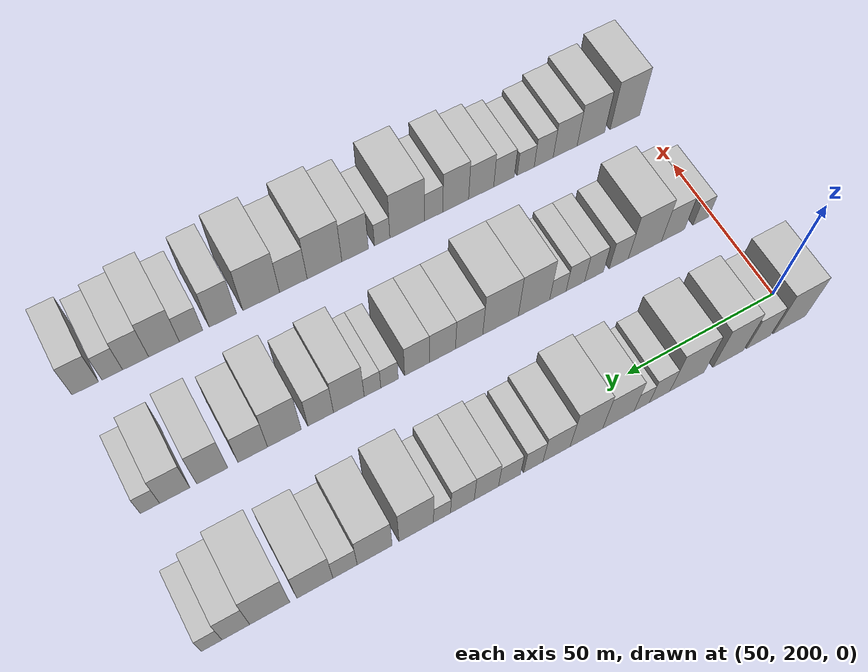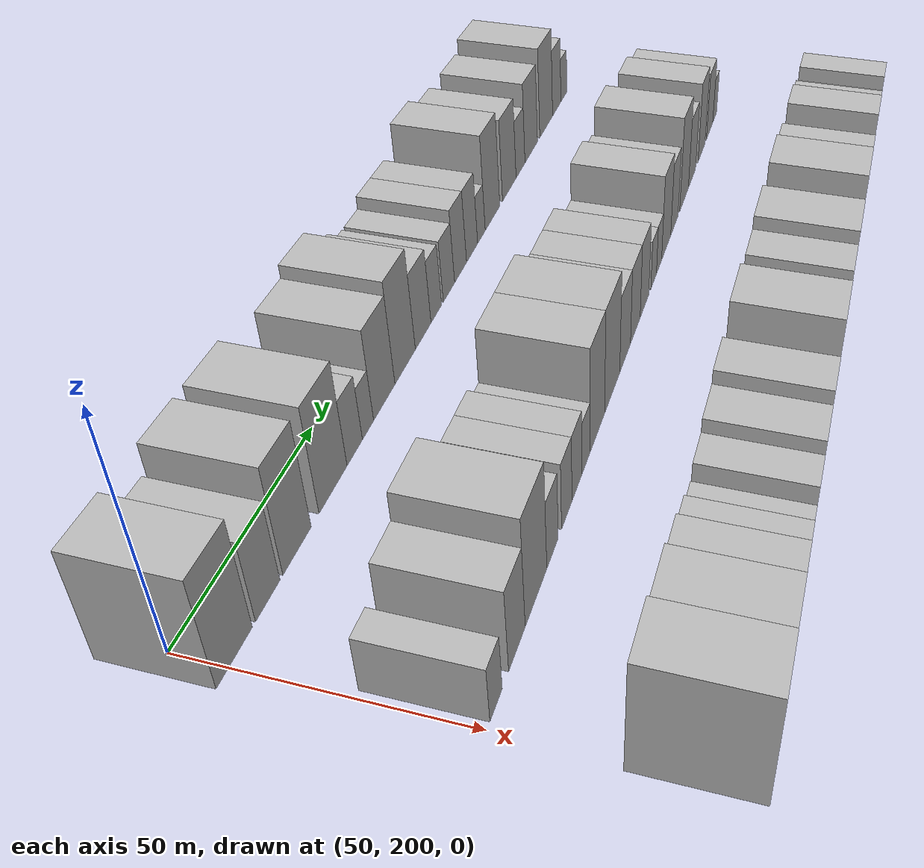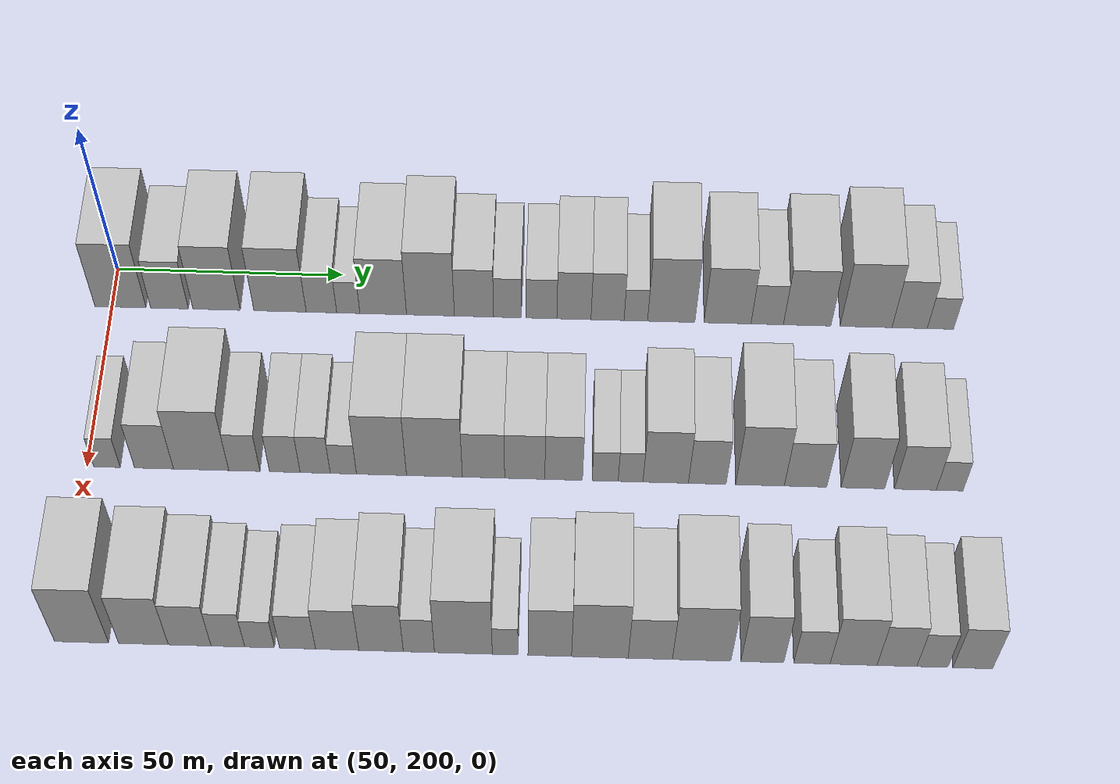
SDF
<sdf version="1.6">
 <world name="default">
  <model name="building_65">
   <static>1</static>
   <pose>50.0000 201.8939 0 0.000000 0.000000 0.000000</pose>
   <link name="link">
    <pose>0 0 12.00 0 0 0</pose>
    <collision name="collision"><geometry><box><size>20.0000 11.2611 24.0000</size></box></geometry></collision>
    <visual name="visual">
     <cast_shadows>0</cast_shadows>
     <geometry><box><size>20.0000 11.2611 24.0000</size></box></geometry>
     <material>
      <script>
       <uri>model://HANNAS_wall/materials/scripts</uri>
       <uri>model://HANNAS_wall/materials/textures</uri>
       <name>vrc/HANNAS_wall</name>
      </script>
     </material>
    </visual>
   </link>
  </model>
  <model name="building_66">
   <static>1</static>
   <pose>50.0000 212.6798 0 0.000000 0.000000 0.000000</pose>
   <link name="link">
    <pose>0 0 9.00 0 0 0</pose>
    <collision name="collision"><geometry><box><size>20.0000 8.3106 18.0000</size></box></geometry></collision>
    <visual name="visual">
     <cast_shadows>0</cast_shadows>
     <geometry><box><size>20.0000 8.3106 18.0000</size></box></geometry>
     <material>
      <script>
       <uri>model://HANNAS_wall/materials/scripts</uri>
       <uri>model://HANNAS_wall/materials/textures</uri>
       <name>vrc/HANNAS_wall</name>
      </script>
     </material>
    </visual>
   </link>
  </model>
  <model name="building_67">
   <static>1</static>
   <pose>50.0000 223.0413 0 0.000000 0.000000 0.000000</pose>
   <link name="link">
    <pose>0 0 12.00 0 0 0</pose>
    <collision name="collision"><geometry><box><size>20.0000 10.4125 24.0000</size></box></geometry></collision>
    <visual name="visual">
     <cast_shadows>0</cast_shadows>
     <geometry><box><size>20.0000 10.4125 24.0000</size></box></geometry>
     <material>
      <script>
       <uri>model://HANNAS_wall/materials/scripts</uri>
       <uri>model://HANNAS_wall/materials/textures</uri>
       <name>vrc/HANNAS_wall</name>
      </script>
     </material>
    </visual>
   </link>
  </model>
  <model name="building_68">
   <static>1</static>
   <pose>50.0000 236.9898 0 0.000000 0.000000 0.000000</pose>
   <link name="link">
    <pose>0 0 12.00 0 0 0</pose>
    <collision name="collision"><geometry><box><size>20.0000 11.4845 24.0000</size></box></geometry></collision>
    <visual name="visual">
     <cast_shadows>0</cast_shadows>
     <geometry><box><size>20.0000 11.4845 24.0000</size></box></geometry>
     <material>
      <script>
       <uri>model://HANNAS_wall/materials/scripts</uri>
       <uri>model://HANNAS_wall/materials/textures</uri>
       <name>vrc/HANNAS_wall</name>
      </script>
     </material>
    </visual>
   </link>
  </model>
  <model name="building_69">
   <static>1</static>
   <pose>50.0000 246.0879 0 0.000000 0.000000 0.000000</pose>
   <link name="link">
    <pose>0 0 7.50 0 0 0</pose>
    <collision name="collision"><geometry><box><size>20.0000 6.7117 15.0000</size></box></geometry></collision>
    <visual name="visual">
     <cast_shadows>0</cast_shadows>
     <geometry><box><size>20.0000 6.7117 15.0000</size></box></geometry>
     <material>
      <script>
       <uri>model://HANNAS_wall/materials/scripts</uri>
       <uri>model://HANNAS_wall/materials/textures</uri>
       <name>vrc/HANNAS_wall</name>
      </script>
     </material>
    </visual>
   </link>
  </model>
  <model name="building_70">
   <static>1</static>
   <pose>50.0000 251.9867 0 0.000000 0.000000 0.000000</pose>
   <link name="link">
    <pose>0 0 6.00 0 0 0</pose>
    <collision name="collision"><geometry><box><size>20.0000 5.0857 12.0000</size></box></geometry></collision>
    <visual name="visual">
     <cast_shadows>0</cast_shadows>
     <geometry><box><size>20.0000 5.0857 12.0000</size></box></geometry>
     <material>
      <script>
       <uri>model://HANNAS_wall/materials/scripts</uri>
       <uri>model://HANNAS_wall/materials/textures</uri>
       <name>vrc/HANNAS_wall</name>
      </script>
     </material>
    </visual>
   </link>
  </model>
  <model name="building_71">
   <static>1</static>
   <pose>50.0000 259.6445 0 0.000000 0.000000 0.000000</pose>
   <link name="link">
    <pose>0 0 10.50 0 0 0</pose>
    <collision name="collision"><geometry><box><size>20.0000 10.2299 21.0000</size></box></geometry></collision>
    <visual name="visual">
     <cast_shadows>0</cast_shadows>
     <geometry><box><size>20.0000 10.2299 21.0000</size></box></geometry>
     <material>
      <script>
       <uri>model://HANNAS_wall/materials/scripts</uri>
       <uri>model://HANNAS_wall/materials/textures</uri>
       <name>vrc/HANNAS_wall</name>
      </script>
     </material>
    </visual>
   </link>
  </model>
  <model name="building_72">
   <static>1</static>
   <pose>50.0000 270.0130 0 0.000000 0.000000 0.000000</pose>
   <link name="link">
    <pose>0 0 12.00 0 0 0</pose>
    <collision name="collision"><geometry><box><size>20.0000 10.5072 24.0000</size></box></geometry></collision>
    <visual name="visual">
     <cast_shadows>0</cast_shadows>
     <geometry><box><size>20.0000 10.5072 24.0000</size></box></geometry>
     <material>
      <script>
       <uri>model://HANNAS_wall/materials/scripts</uri>
       <uri>model://HANNAS_wall/materials/textures</uri>
       <name>vrc/HANNAS_wall</name>
      </script>
     </material>
    </visual>
   </link>
  </model>
  <model name="building_73">
   <static>1</static>
   <pose>50.0000 279.5497 0 0.000000 0.000000 0.000000</pose>
   <link name="link">
    <pose>0 0 9.00 0 0 0</pose>
    <collision name="collision"><geometry><box><size>20.0000 8.5662 18.0000</size></box></geometry></collision>
    <visual name="visual">
     <cast_shadows>0</cast_shadows>
     <geometry><box><size>20.0000 8.5662 18.0000</size></box></geometry>
     <material>
      <script>
       <uri>model://HANNAS_wall/materials/scripts</uri>
       <uri>model://HANNAS_wall/materials/textures</uri>
       <name>vrc/HANNAS_wall</name>
      </script>
     </material>
    </visual>
   </link>
  </model>
  <model name="building_74">
   <static>1</static>
   <pose>50.0000 286.8619 0 0.000000 0.000000 0.000000</pose>
   <link name="link">
    <pose>0 0 7.50 0 0 0</pose>
    <collision name="collision"><geometry><box><size>20.0000 6.0583 15.0000</size></box></geometry></collision>
    <visual name="visual">
     <cast_shadows>0</cast_shadows>
     <geometry><box><size>20.0000 6.0583 15.0000</size></box></geometry>
     <material>
      <script>
       <uri>model://HANNAS_wall/materials/scripts</uri>
       <uri>model://HANNAS_wall/materials/textures</uri>
       <name>vrc/HANNAS_wall</name>
      </script>
     </material>
    </visual>
   </link>
  </model>
  <model name="building_75">
   <static>1</static>
   <pose>50.0000 294.2836 0 0.000000 0.000000 0.000000</pose>
   <link name="link">
    <pose>0 0 7.50 0 0 0</pose>
    <collision name="collision"><geometry><box><size>20.0000 6.7849 15.0000</size></box></geometry></collision>
    <visual name="visual">
     <cast_shadows>0</cast_shadows>
     <geometry><box><size>20.0000 6.7849 15.0000</size></box></geometry>
     <material>
      <script>
       <uri>model://HANNAS_wall/materials/scripts</uri>
       <uri>model://HANNAS_wall/materials/textures</uri>
       <name>vrc/HANNAS_wall</name>
      </script>
     </material>
    </visual>
   </link>
  </model>
  <model name="building_76">
   <static>1</static>
   <pose>50.0000 301.4086 0 0.000000 0.000000 0.000000</pose>
   <link name="link">
    <pose>0 0 9.00 0 0 0</pose>
    <collision name="collision"><geometry><box><size>20.0000 7.4652 18.0000</size></box></geometry></collision>
    <visual name="visual">
     <cast_shadows>0</cast_shadows>
     <geometry><box><size>20.0000 7.4652 18.0000</size></box></geometry>
     <material>
      <script>
       <uri>model://HANNAS_wall/materials/scripts</uri>
       <uri>model://HANNAS_wall/materials/textures</uri>
       <name>vrc/HANNAS_wall</name>
      </script>
     </material>
    </visual>
   </link>
  </model>
  <model name="building_77">
   <static>1</static>
   <pose>50.0000 308.7556 0 0.000000 0.000000 0.000000</pose>
   <link name="link">
    <pose>0 0 9.00 0 0 0</pose>
    <collision name="collision"><geometry><box><size>20.0000 7.2288 18.0000</size></box></geometry></collision>
    <visual name="visual">
     <cast_shadows>0</cast_shadows>
     <geometry><box><size>20.0000 7.2288 18.0000</size></box></geometry>
     <material>
      <script>
       <uri>model://HANNAS_wall/materials/scripts</uri>
       <uri>model://HANNAS_wall/materials/textures</uri>
       <name>vrc/HANNAS_wall</name>
      </script>
     </material>
    </visual>
   </link>
  </model>
  <model name="building_78">
   <static>1</static>
   <pose>50.0000 314.9421 0 0.000000 0.000000 0.000000</pose>
   <link name="link">
    <pose>0 0 6.00 0 0 0</pose>
    <collision name="collision"><geometry><box><size>20.0000 5.1442 12.0000</size></box></geometry></collision>
    <visual name="visual">
     <cast_shadows>0</cast_shadows>
     <geometry><box><size>20.0000 5.1442 12.0000</size></box></geometry>
     <material>
      <script>
       <uri>model://HANNAS_wall/materials/scripts</uri>
       <uri>model://HANNAS_wall/materials/textures</uri>
       <name>vrc/HANNAS_wall</name>
      </script>
     </material>
    </visual>
   </link>
  </model>
  <model name="building_79">
   <static>1</static>
   <pose>50.0000 322.6762 0 0.000000 0.000000 0.000000</pose>
   <link name="link">
    <pose>0 0 12.00 0 0 0</pose>
    <collision name="collision"><geometry><box><size>20.0000 10.3239 24.0000</size></box></geometry></collision>
    <visual name="visual">
     <cast_shadows>0</cast_shadows>
     <geometry><box><size>20.0000 10.3239 24.0000</size></box></geometry>
     <material>
      <script>
       <uri>model://HANNAS_wall/materials/scripts</uri>
       <uri>model://HANNAS_wall/materials/textures</uri>
       <name>vrc/HANNAS_wall</name>
      </script>
     </material>
    </visual>
   </link>
  </model>
  <model name="building_80">
   <static>1</static>
   <pose>50.0000 334.9730 0 0.000000 0.000000 0.000000</pose>
   <link name="link">
    <pose>0 0 10.50 0 0 0</pose>
    <collision name="collision"><geometry><box><size>20.0000 10.2697 21.0000</size></box></geometry></collision>
    <visual name="visual">
     <cast_shadows>0</cast_shadows>
     <geometry><box><size>20.0000 10.2697 21.0000</size></box></geometry>
     <material>
      <script>
       <uri>model://HANNAS_wall/materials/scripts</uri>
       <uri>model://HANNAS_wall/materials/textures</uri>
       <name>vrc/HANNAS_wall</name>
      </script>
     </material>
    </visual>
   </link>
  </model>
  <model name="building_81">
   <static>1</static>
   <pose>50.0000 343.6365 0 0.000000 0.000000 0.000000</pose>
   <link name="link">
    <pose>0 0 7.50 0 0 0</pose>
    <collision name="collision"><geometry><box><size>20.0000 7.0573 15.0000</size></box></geometry></collision>
    <visual name="visual">
     <cast_shadows>0</cast_shadows>
     <geometry><box><size>20.0000 7.0573 15.0000</size></box></geometry>
     <material>
      <script>
       <uri>model://HANNAS_wall/materials/scripts</uri>
       <uri>model://HANNAS_wall/materials/textures</uri>
       <name>vrc/HANNAS_wall</name>
      </script>
     </material>
    </visual>
   </link>
  </model>
  <model name="building_82">
   <static>1</static>
   <pose>50.0000 352.3466 0 0.000000 0.000000 0.000000</pose>
   <link name="link">
    <pose>0 0 10.50 0 0 0</pose>
    <collision name="collision"><geometry><box><size>20.0000 10.3629 21.0000</size></box></geometry></collision>
    <visual name="visual">
     <cast_shadows>0</cast_shadows>
     <geometry><box><size>20.0000 10.3629 21.0000</size></box></geometry>
     <material>
      <script>
       <uri>model://HANNAS_wall/materials/scripts</uri>
       <uri>model://HANNAS_wall/materials/textures</uri>
       <name>vrc/HANNAS_wall</name>
      </script>
     </material>
    </visual>
   </link>
  </model>
  <model name="building_83">
   <static>1</static>
   <pose>50.0000 365.1858 0 0.000000 0.000000 0.000000</pose>
   <link name="link">
    <pose>0 0 12.00 0 0 0</pose>
    <collision name="collision"><geometry><box><size>20.0000 11.3154 24.0000</size></box></geometry></collision>
    <visual name="visual">
     <cast_shadows>0</cast_shadows>
     <geometry><box><size>20.0000 11.3154 24.0000</size></box></geometry>
     <material>
      <script>
       <uri>model://HANNAS_wall/materials/scripts</uri>
       <uri>model://HANNAS_wall/materials/textures</uri>
       <name>vrc/HANNAS_wall</name>
      </script>
     </material>
    </visual>
   </link>
  </model>
  <model name="building_84">
   <static>1</static>
   <pose>50.0000 374.6880 0 0.000000 0.000000 0.000000</pose>
   <link name="link">
    <pose>0 0 9.00 0 0 0</pose>
    <collision name="collision"><geometry><box><size>20.0000 7.6889 18.0000</size></box></geometry></collision>
    <visual name="visual">
     <cast_shadows>0</cast_shadows>
     <geometry><box><size>20.0000 7.6889 18.0000</size></box></geometry>
     <material>
      <script>
       <uri>model://HANNAS_wall/materials/scripts</uri>
       <uri>model://HANNAS_wall/materials/textures</uri>
       <name>vrc/HANNAS_wall</name>
      </script>
     </material>
    </visual>
   </link>
  </model>
  <model name="building_85">
   <static>1</static>
   <pose>50.0000 381.3923 0 0.000000 0.000000 0.000000</pose>
   <link name="link">
    <pose>0 0 6.00 0 0 0</pose>
    <collision name="collision"><geometry><box><size>20.0000 5.7198 12.0000</size></box></geometry></collision>
    <visual name="visual">
     <cast_shadows>0</cast_shadows>
     <geometry><box><size>20.0000 5.7198 12.0000</size></box></geometry>
     <material>
      <script>
       <uri>model://HANNAS_wall/materials/scripts</uri>
       <uri>model://HANNAS_wall/materials/textures</uri>
       <name>vrc/HANNAS_wall</name>
      </script>
     </material>
    </visual>
   </link>
  </model>
  <model name="building_145">
   <static>1</static>
   <pose>90.0000 204.2063 0 0.000000 0.000000 0.000000</pose>
   <link name="link">
    <pose>0 0 6.00 0 0 0</pose>
    <collision name="collision"><geometry><box><size>20.0000 5.6106 12.0000</size></box></geometry></collision>
    <visual name="visual">
     <cast_shadows>0</cast_shadows>
     <geometry><box><size>20.0000 5.6106 12.0000</size></box></geometry>
     <material>
      <script>
       <uri>model://HANNAS_wall/materials/scripts</uri>
       <uri>model://HANNAS_wall/materials/textures</uri>
       <name>vrc/HANNAS_wall</name>
      </script>
     </material>
    </visual>
   </link>
  </model>
  <model name="building_146">
   <static>1</static>
   <pose>90.0000 214.1140 0 0.000000 0.000000 0.000000</pose>
   <link name="link">
    <pose>0 0 9.00 0 0 0</pose>
    <collision name="collision"><geometry><box><size>20.0000 8.2049 18.0000</size></box></geometry></collision>
    <visual name="visual">
     <cast_shadows>0</cast_shadows>
     <geometry><box><size>20.0000 8.2049 18.0000</size></box></geometry>
     <material>
      <script>
       <uri>model://HANNAS_wall/materials/scripts</uri>
       <uri>model://HANNAS_wall/materials/textures</uri>
       <name>vrc/HANNAS_wall</name>
      </script>
     </material>
    </visual>
   </link>
  </model>
  <model name="building_147">
   <static>1</static>
   <pose>90.0000 224.0217 0 0.000000 0.000000 0.000000</pose>
   <link name="link">
    <pose>0 0 12.00 0 0 0</pose>
    <collision name="collision"><geometry><box><size>20.0000 11.6106 24.0000</size></box></geometry></collision>
    <visual name="visual">
     <cast_shadows>0</cast_shadows>
     <geometry><box><size>20.0000 11.6106 24.0000</size></box></geometry>
     <material>
      <script>
       <uri>model://HANNAS_wall/materials/scripts</uri>
       <uri>model://HANNAS_wall/materials/textures</uri>
       <name>vrc/HANNAS_wall</name>
      </script>
     </material>
    </visual>
   </link>
  </model>
  <model name="building_148">
   <static>1</static>
   <pose>90.0000 233.1136 0 0.000000 0.000000 0.000000</pose>
   <link name="link">
    <pose>0 0 7.50 0 0 0</pose>
    <collision name="collision"><geometry><box><size>20.0000 6.5731 15.0000</size></box></geometry></collision>
    <visual name="visual">
     <cast_shadows>0</cast_shadows>
     <geometry><box><size>20.0000 6.5731 15.0000</size></box></geometry>
     <material>
      <script>
       <uri>model://HANNAS_wall/materials/scripts</uri>
       <uri>model://HANNAS_wall/materials/textures</uri>
       <name>vrc/HANNAS_wall</name>
      </script>
     </material>
    </visual>
   </link>
  </model>
  <model name="building_149">
   <static>1</static>
   <pose>90.0000 241.6162 0 0.000000 0.000000 0.000000</pose>
   <link name="link">
    <pose>0 0 7.50 0 0 0</pose>
    <collision name="collision"><geometry><box><size>20.0000 6.4322 15.0000</size></box></geometry></collision>
    <visual name="visual">
     <cast_shadows>0</cast_shadows>
     <geometry><box><size>20.0000 6.4322 15.0000</size></box></geometry>
     <material>
      <script>
       <uri>model://HANNAS_wall/materials/scripts</uri>
       <uri>model://HANNAS_wall/materials/textures</uri>
       <name>vrc/HANNAS_wall</name>
      </script>
     </material>
    </visual>
   </link>
  </model>
  <model name="building_150">
   <static>1</static>
   <pose>90.0000 247.9891 0 0.000000 0.000000 0.000000</pose>
   <link name="link">
    <pose>0 0 7.50 0 0 0</pose>
    <collision name="collision"><geometry><box><size>20.0000 6.3134 15.0000</size></box></geometry></collision>
    <visual name="visual">
     <cast_shadows>0</cast_shadows>
     <geometry><box><size>20.0000 6.3134 15.0000</size></box></geometry>
     <material>
      <script>
       <uri>model://HANNAS_wall/materials/scripts</uri>
       <uri>model://HANNAS_wall/materials/textures</uri>
       <name>vrc/HANNAS_wall</name>
      </script>
     </material>
    </visual>
   </link>
  </model>
  <model name="building_151">
   <static>1</static>
   <pose>90.0000 253.9044 0 0.000000 0.000000 0.000000</pose>
   <link name="link">
    <pose>0 0 6.00 0 0 0</pose>
    <collision name="collision"><geometry><box><size>20.0000 5.5173 12.0000</size></box></geometry></collision>
    <visual name="visual">
     <cast_shadows>0</cast_shadows>
     <geometry><box><size>20.0000 5.5173 12.0000</size></box></geometry>
     <material>
      <script>
       <uri>model://HANNAS_wall/materials/scripts</uri>
       <uri>model://HANNAS_wall/materials/textures</uri>
       <name>vrc/HANNAS_wall</name>
      </script>
     </material>
    </visual>
   </link>
  </model>
  <model name="building_152">
   <static>1</static>
   <pose>90.0000 261.9035 0 0.000000 0.000000 0.000000</pose>
   <link name="link">
    <pose>0 0 12.00 0 0 0</pose>
    <collision name="collision"><geometry><box><size>20.0000 10.4809 24.0000</size></box></geometry></collision>
    <visual name="visual">
     <cast_shadows>0</cast_shadows>
     <geometry><box><size>20.0000 10.4809 24.0000</size></box></geometry>
     <material>
      <script>
       <uri>model://HANNAS_wall/materials/scripts</uri>
       <uri>model://HANNAS_wall/materials/textures</uri>
       <name>vrc/HANNAS_wall</name>
      </script>
     </material>
    </visual>
   </link>
  </model>
  <model name="building_153">
   <static>1</static>
   <pose>90.0000 272.9982 0 0.000000 0.000000 0.000000</pose>
   <link name="link">
    <pose>0 0 12.00 0 0 0</pose>
    <collision name="collision"><geometry><box><size>20.0000 11.7085 24.0000</size></box></geometry></collision>
    <visual name="visual">
     <cast_shadows>0</cast_shadows>
     <geometry><box><size>20.0000 11.7085 24.0000</size></box></geometry>
     <material>
      <script>
       <uri>model://HANNAS_wall/materials/scripts</uri>
       <uri>model://HANNAS_wall/materials/textures</uri>
       <name>vrc/HANNAS_wall</name>
      </script>
     </material>
    </visual>
   </link>
  </model>
  <model name="building_154">
   <static>1</static>
   <pose>90.0000 283.2798 0 0.000000 0.000000 0.000000</pose>
   <link name="link">
    <pose>0 0 9.00 0 0 0</pose>
    <collision name="collision"><geometry><box><size>20.0000 8.8545 18.0000</size></box></geometry></collision>
    <visual name="visual">
     <cast_shadows>0</cast_shadows>
     <geometry><box><size>20.0000 8.8545 18.0000</size></box></geometry>
     <material>
      <script>
       <uri>model://HANNAS_wall/materials/scripts</uri>
       <uri>model://HANNAS_wall/materials/textures</uri>
       <name>vrc/HANNAS_wall</name>
      </script>
     </material>
    </visual>
   </link>
  </model>
  <model name="building_155">
   <static>1</static>
   <pose>90.0000 291.9110 0 0.000000 0.000000 0.000000</pose>
   <link name="link">
    <pose>0 0 9.00 0 0 0</pose>
    <collision name="collision"><geometry><box><size>20.0000 8.4079 18.0000</size></box></geometry></collision>
    <visual name="visual">
     <cast_shadows>0</cast_shadows>
     <geometry><box><size>20.0000 8.4079 18.0000</size></box></geometry>
     <material>
      <script>
       <uri>model://HANNAS_wall/materials/scripts</uri>
       <uri>model://HANNAS_wall/materials/textures</uri>
       <name>vrc/HANNAS_wall</name>
      </script>
     </material>
    </visual>
   </link>
  </model>
  <model name="building_156">
   <static>1</static>
   <pose>90.0000 300.0490 0 0.000000 0.000000 0.000000</pose>
   <link name="link">
    <pose>0 0 9.00 0 0 0</pose>
    <collision name="collision"><geometry><box><size>20.0000 7.8681 18.0000</size></box></geometry></collision>
    <visual name="visual">
     <cast_shadows>0</cast_shadows>
     <geometry><box><size>20.0000 7.8681 18.0000</size></box></geometry>
     <material>
      <script>
       <uri>model://HANNAS_wall/materials/scripts</uri>
       <uri>model://HANNAS_wall/materials/textures</uri>
       <name>vrc/HANNAS_wall</name>
      </script>
     </material>
    </visual>
   </link>
  </model>
  <model name="building_157">
   <static>1</static>
   <pose>90.0000 308.7134 0 0.000000 0.000000 0.000000</pose>
   <link name="link">
    <pose>0 0 6.00 0 0 0</pose>
    <collision name="collision"><geometry><box><size>20.0000 5.4607 12.0000</size></box></geometry></collision>
    <visual name="visual">
     <cast_shadows>0</cast_shadows>
     <geometry><box><size>20.0000 5.4607 12.0000</size></box></geometry>
     <material>
      <script>
       <uri>model://HANNAS_wall/materials/scripts</uri>
       <uri>model://HANNAS_wall/materials/textures</uri>
       <name>vrc/HANNAS_wall</name>
      </script>
     </material>
    </visual>
   </link>
  </model>
  <model name="building_158">
   <static>1</static>
   <pose>90.0000 314.0347 0 0.000000 0.000000 0.000000</pose>
   <link name="link">
    <pose>0 0 6.00 0 0 0</pose>
    <collision name="collision"><geometry><box><size>20.0000 5.1819 12.0000</size></box></geometry></collision>
    <visual name="visual">
     <cast_shadows>0</cast_shadows>
     <geometry><box><size>20.0000 5.1819 12.0000</size></box></geometry>
     <material>
      <script>
       <uri>model://HANNAS_wall/materials/scripts</uri>
       <uri>model://HANNAS_wall/materials/textures</uri>
       <name>vrc/HANNAS_wall</name>
      </script>
     </material>
    </visual>
   </link>
  </model>
  <model name="building_159">
   <static>1</static>
   <pose>90.0000 321.3732 0 0.000000 0.000000 0.000000</pose>
   <link name="link">
    <pose>0 0 10.50 0 0 0</pose>
    <collision name="collision"><geometry><box><size>20.0000 9.4953 21.0000</size></box></geometry></collision>
    <visual name="visual">
     <cast_shadows>0</cast_shadows>
     <geometry><box><size>20.0000 9.4953 21.0000</size></box></geometry>
     <material>
      <script>
       <uri>model://HANNAS_wall/materials/scripts</uri>
       <uri>model://HANNAS_wall/materials/textures</uri>
       <name>vrc/HANNAS_wall</name>
      </script>
     </material>
    </visual>
   </link>
  </model>
  <model name="building_160">
   <static>1</static>
   <pose>90.0000 330.0523 0 0.000000 0.000000 0.000000</pose>
   <link name="link">
    <pose>0 0 9.00 0 0 0</pose>
    <collision name="collision"><geometry><box><size>20.0000 7.8629 18.0000</size></box></geometry></collision>
    <visual name="visual">
     <cast_shadows>0</cast_shadows>
     <geometry><box><size>20.0000 7.8629 18.0000</size></box></geometry>
     <material>
      <script>
       <uri>model://HANNAS_wall/materials/scripts</uri>
       <uri>model://HANNAS_wall/materials/textures</uri>
       <name>vrc/HANNAS_wall</name>
      </script>
     </material>
    </visual>
   </link>
  </model>
  <model name="building_161">
   <static>1</static>
   <pose>90.0000 341.0586 0 0.000000 0.000000 0.000000</pose>
   <link name="link">
    <pose>0 0 12.00 0 0 0</pose>
    <collision name="collision"><geometry><box><size>20.0000 10.1496 24.0000</size></box></geometry></collision>
    <visual name="visual">
     <cast_shadows>0</cast_shadows>
     <geometry><box><size>20.0000 10.1496 24.0000</size></box></geometry>
     <material>
      <script>
       <uri>model://HANNAS_wall/materials/scripts</uri>
       <uri>model://HANNAS_wall/materials/textures</uri>
       <name>vrc/HANNAS_wall</name>
      </script>
     </material>
    </visual>
   </link>
  </model>
  <model name="building_162">
   <static>1</static>
   <pose>90.0000 350.5519 0 0.000000 0.000000 0.000000</pose>
   <link name="link">
    <pose>0 0 9.00 0 0 0</pose>
    <collision name="collision"><geometry><box><size>20.0000 8.8370 18.0000</size></box></geometry></collision>
    <visual name="visual">
     <cast_shadows>0</cast_shadows>
     <geometry><box><size>20.0000 8.8370 18.0000</size></box></geometry>
     <material>
      <script>
       <uri>model://HANNAS_wall/materials/scripts</uri>
       <uri>model://HANNAS_wall/materials/textures</uri>
       <name>vrc/HANNAS_wall</name>
      </script>
     </material>
    </visual>
   </link>
  </model>
  <model name="building_163">
   <static>1</static>
   <pose>90.0000 362.5187 0 0.000000 0.000000 0.000000</pose>
   <link name="link">
    <pose>0 0 10.50 0 0 0</pose>
    <collision name="collision"><geometry><box><size>20.0000 9.0964 21.0000</size></box></geometry></collision>
    <visual name="visual">
     <cast_shadows>0</cast_shadows>
     <geometry><box><size>20.0000 9.0964 21.0000</size></box></geometry>
     <material>
      <script>
       <uri>model://HANNAS_wall/materials/scripts</uri>
       <uri>model://HANNAS_wall/materials/textures</uri>
       <name>vrc/HANNAS_wall</name>
      </script>
     </material>
    </visual>
   </link>
  </model>
  <model name="building_164">
   <static>1</static>
   <pose>90.0000 373.4309 0 0.000000 0.000000 0.000000</pose>
   <link name="link">
    <pose>0 0 9.00 0 0 0</pose>
    <collision name="collision"><geometry><box><size>20.0000 8.7281 18.0000</size></box></geometry></collision>
    <visual name="visual">
     <cast_shadows>0</cast_shadows>
     <geometry><box><size>20.0000 8.7281 18.0000</size></box></geometry>
     <material>
      <script>
       <uri>model://HANNAS_wall/materials/scripts</uri>
       <uri>model://HANNAS_wall/materials/textures</uri>
       <name>vrc/HANNAS_wall</name>
      </script>
     </material>
    </visual>
   </link>
  </model>
  <model name="building_165">
   <static>1</static>
   <pose>90.0000 380.5736 0 0.000000 0.000000 0.000000</pose>
   <link name="link">
    <pose>0 0 6.00 0 0 0</pose>
    <collision name="collision"><geometry><box><size>20.0000 5.5572 12.0000</size></box></geometry></collision>
    <visual name="visual">
     <cast_shadows>0</cast_shadows>
     <geometry><box><size>20.0000 5.5572 12.0000</size></box></geometry>
     <material>
      <script>
       <uri>model://HANNAS_wall/materials/scripts</uri>
       <uri>model://HANNAS_wall/materials/textures</uri>
       <name>vrc/HANNAS_wall</name>
      </script>
     </material>
    </visual>
   </link>
  </model>
  <model name="building_233">
   <static>1</static>
   <pose>130.0000 204.4107 0 0.000000 0.000000 0.000000</pose>
   <link name="link">
    <pose>0 0 12.00 0 0 0</pose>
    <collision name="collision"><geometry><box><size>20.0000 10.8723 24.0000</size></box></geometry></collision>
    <visual name="visual">
     <cast_shadows>0</cast_shadows>
     <geometry><box><size>20.0000 10.8723 24.0000</size></box></geometry>
     <material>
      <script>
       <uri>model://HANNAS_wall/materials/scripts</uri>
       <uri>model://HANNAS_wall/materials/textures</uri>
       <name>vrc/HANNAS_wall</name>
      </script>
     </material>
    </visual>
   </link>
  </model>
  <model name="building_234">
   <static>1</static>
   <pose>130.0000 216.8339 0 0.000000 0.000000 0.000000</pose>
   <link name="link">
    <pose>0 0 10.50 0 0 0</pose>
    <collision name="collision"><geometry><box><size>20.0000 9.9742 21.0000</size></box></geometry></collision>
    <visual name="visual">
     <cast_shadows>0</cast_shadows>
     <geometry><box><size>20.0000 9.9742 21.0000</size></box></geometry>
     <material>
      <script>
       <uri>model://HANNAS_wall/materials/scripts</uri>
       <uri>model://HANNAS_wall/materials/textures</uri>
       <name>vrc/HANNAS_wall</name>
      </script>
     </material>
    </visual>
   </link>
  </model>
  <model name="building_235">
   <static>1</static>
   <pose>130.0000 226.1136 0 0.000000 0.000000 0.000000</pose>
   <link name="link">
    <pose>0 0 9.00 0 0 0</pose>
    <collision name="collision"><geometry><box><size>20.0000 8.5852 18.0000</size></box></geometry></collision>
    <visual name="visual">
     <cast_shadows>0</cast_shadows>
     <geometry><box><size>20.0000 8.5852 18.0000</size></box></geometry>
     <material>
      <script>
       <uri>model://HANNAS_wall/materials/scripts</uri>
       <uri>model://HANNAS_wall/materials/textures</uri>
       <name>vrc/HANNAS_wall</name>
      </script>
     </material>
    </visual>
   </link>
  </model>
  <model name="building_236">
   <static>1</static>
   <pose>130.0000 233.7763 0 0.000000 0.000000 0.000000</pose>
   <link name="link">
    <pose>0 0 7.50 0 0 0</pose>
    <collision name="collision"><geometry><box><size>20.0000 6.7401 15.0000</size></box></geometry></collision>
    <visual name="visual">
     <cast_shadows>0</cast_shadows>
     <geometry><box><size>20.0000 6.7401 15.0000</size></box></geometry>
     <material>
      <script>
       <uri>model://HANNAS_wall/materials/scripts</uri>
       <uri>model://HANNAS_wall/materials/textures</uri>
       <name>vrc/HANNAS_wall</name>
      </script>
     </material>
    </visual>
   </link>
  </model>
  <model name="building_237">
   <static>1</static>
   <pose>130.0000 240.1363 0 0.000000 0.000000 0.000000</pose>
   <link name="link">
    <pose>0 0 6.00 0 0 0</pose>
    <collision name="collision"><geometry><box><size>20.0000 5.9798 12.0000</size></box></geometry></collision>
    <visual name="visual">
     <cast_shadows>0</cast_shadows>
     <geometry><box><size>20.0000 5.9798 12.0000</size></box></geometry>
     <material>
      <script>
       <uri>model://HANNAS_wall/materials/scripts</uri>
       <uri>model://HANNAS_wall/materials/textures</uri>
       <name>vrc/HANNAS_wall</name>
      </script>
     </material>
    </visual>
   </link>
  </model>
  <model name="building_238">
   <static>1</static>
   <pose>130.0000 247.7335 0 0.000000 0.000000 0.000000</pose>
   <link name="link">
    <pose>0 0 7.50 0 0 0</pose>
    <collision name="collision"><geometry><box><size>20.0000 7.2147 15.0000</size></box></geometry></collision>
    <visual name="visual">
     <cast_shadows>0</cast_shadows>
     <geometry><box><size>20.0000 7.2147 15.0000</size></box></geometry>
     <material>
      <script>
       <uri>model://HANNAS_wall/materials/scripts</uri>
       <uri>model://HANNAS_wall/materials/textures</uri>
       <name>vrc/HANNAS_wall</name>
      </script>
     </material>
    </visual>
   </link>
  </model>
  <model name="building_239">
   <static>1</static>
   <pose>130.0000 255.6864 0 0.000000 0.000000 0.000000</pose>
   <link name="link">
    <pose>0 0 9.00 0 0 0</pose>
    <collision name="collision"><geometry><box><size>20.0000 8.6911 18.0000</size></box></geometry></collision>
    <visual name="visual">
     <cast_shadows>0</cast_shadows>
     <geometry><box><size>20.0000 8.6911 18.0000</size></box></geometry>
     <material>
      <script>
       <uri>model://HANNAS_wall/materials/scripts</uri>
       <uri>model://HANNAS_wall/materials/textures</uri>
       <name>vrc/HANNAS_wall</name>
      </script>
     </material>
    </visual>
   </link>
  </model>
  <model name="building_240">
   <static>1</static>
   <pose>130.0000 264.4739 0 0.000000 0.000000 0.000000</pose>
   <link name="link">
    <pose>0 0 10.50 0 0 0</pose>
    <collision name="collision"><geometry><box><size>20.0000 8.8838 21.0000</size></box></geometry></collision>
    <visual name="visual">
     <cast_shadows>0</cast_shadows>
     <geometry><box><size>20.0000 8.8838 21.0000</size></box></geometry>
     <material>
      <script>
       <uri>model://HANNAS_wall/materials/scripts</uri>
       <uri>model://HANNAS_wall/materials/textures</uri>
       <name>vrc/HANNAS_wall</name>
      </script>
     </material>
    </visual>
   </link>
  </model>
  <model name="building_241">
   <static>1</static>
   <pose>130.0000 272.0301 0 0.000000 0.000000 0.000000</pose>
   <link name="link">
    <pose>0 0 7.50 0 0 0</pose>
    <collision name="collision"><geometry><box><size>20.0000 6.2285 15.0000</size></box></geometry></collision>
    <visual name="visual">
     <cast_shadows>0</cast_shadows>
     <geometry><box><size>20.0000 6.2285 15.0000</size></box></geometry>
     <material>
      <script>
       <uri>model://HANNAS_wall/materials/scripts</uri>
       <uri>model://HANNAS_wall/materials/textures</uri>
       <name>vrc/HANNAS_wall</name>
      </script>
     </material>
    </visual>
   </link>
  </model>
  <model name="building_242">
   <static>1</static>
   <pose>130.0000 280.9177 0 0.000000 0.000000 0.000000</pose>
   <link name="link">
    <pose>0 0 12.00 0 0 0</pose>
    <collision name="collision"><geometry><box><size>20.0000 11.5468 24.0000</size></box></geometry></collision>
    <visual name="visual">
     <cast_shadows>0</cast_shadows>
     <geometry><box><size>20.0000 11.5468 24.0000</size></box></geometry>
     <material>
      <script>
       <uri>model://HANNAS_wall/materials/scripts</uri>
       <uri>model://HANNAS_wall/materials/textures</uri>
       <name>vrc/HANNAS_wall</name>
      </script>
     </material>
    </visual>
   </link>
  </model>
  <model name="building_243">
   <static>1</static>
   <pose>130.0000 289.2517 0 0.000000 0.000000 0.000000</pose>
   <link name="link">
    <pose>0 0 6.00 0 0 0</pose>
    <collision name="collision"><geometry><box><size>20.0000 5.1211 12.0000</size></box></geometry></collision>
    <visual name="visual">
     <cast_shadows>0</cast_shadows>
     <geometry><box><size>20.0000 5.1211 12.0000</size></box></geometry>
     <material>
      <script>
       <uri>model://HANNAS_wall/materials/scripts</uri>
       <uri>model://HANNAS_wall/materials/textures</uri>
       <name>vrc/HANNAS_wall</name>
      </script>
     </material>
    </visual>
   </link>
  </model>
  <model name="building_244">
   <static>1</static>
   <pose>130.0000 298.1577 0 0.000000 0.000000 0.000000</pose>
   <link name="link">
    <pose>0 0 10.50 0 0 0</pose>
    <collision name="collision"><geometry><box><size>20.0000 8.6908 21.0000</size></box></geometry></collision>
    <visual name="visual">
     <cast_shadows>0</cast_shadows>
     <geometry><box><size>20.0000 8.6908 21.0000</size></box></geometry>
     <material>
      <script>
       <uri>model://HANNAS_wall/materials/scripts</uri>
       <uri>model://HANNAS_wall/materials/textures</uri>
       <name>vrc/HANNAS_wall</name>
      </script>
     </material>
    </visual>
   </link>
  </model>
  <model name="building_245">
   <static>1</static>
   <pose>130.0000 308.1584 0 0.000000 0.000000 0.000000</pose>
   <link name="link">
    <pose>0 0 12.00 0 0 0</pose>
    <collision name="collision"><geometry><box><size>20.0000 11.3106 24.0000</size></box></geometry></collision>
    <visual name="visual">
     <cast_shadows>0</cast_shadows>
     <geometry><box><size>20.0000 11.3106 24.0000</size></box></geometry>
     <material>
      <script>
       <uri>model://HANNAS_wall/materials/scripts</uri>
       <uri>model://HANNAS_wall/materials/textures</uri>
       <name>vrc/HANNAS_wall</name>
      </script>
     </material>
    </visual>
   </link>
  </model>
  <model name="building_246">
   <static>1</static>
   <pose>130.0000 318.2241 0 0.000000 0.000000 0.000000</pose>
   <link name="link">
    <pose>0 0 9.00 0 0 0</pose>
    <collision name="collision"><geometry><box><size>20.0000 8.8208 18.0000</size></box></geometry></collision>
    <visual name="visual">
     <cast_shadows>0</cast_shadows>
     <geometry><box><size>20.0000 8.8208 18.0000</size></box></geometry>
     <material>
      <script>
       <uri>model://HANNAS_wall/materials/scripts</uri>
       <uri>model://HANNAS_wall/materials/textures</uri>
       <name>vrc/HANNAS_wall</name>
      </script>
     </material>
    </visual>
   </link>
  </model>
  <model name="building_247">
   <static>1</static>
   <pose>130.0000 328.4529 0 0.000000 0.000000 0.000000</pose>
   <link name="link">
    <pose>0 0 12.00 0 0 0</pose>
    <collision name="collision"><geometry><box><size>20.0000 11.6368 24.0000</size></box></geometry></collision>
    <visual name="visual">
     <cast_shadows>0</cast_shadows>
     <geometry><box><size>20.0000 11.6368 24.0000</size></box></geometry>
     <material>
      <script>
       <uri>model://HANNAS_wall/materials/scripts</uri>
       <uri>model://HANNAS_wall/materials/textures</uri>
       <name>vrc/HANNAS_wall</name>
      </script>
     </material>
    </visual>
   </link>
  </model>
  <model name="building_248">
   <static>1</static>
   <pose>130.0000 340.5234 0 0.000000 0.000000 0.000000</pose>
   <link name="link">
    <pose>0 0 10.50 0 0 0</pose>
    <collision name="collision"><geometry><box><size>20.0000 8.5042 21.0000</size></box></geometry></collision>
    <visual name="visual">
     <cast_shadows>0</cast_shadows>
     <geometry><box><size>20.0000 8.5042 21.0000</size></box></geometry>
     <material>
      <script>
       <uri>model://HANNAS_wall/materials/scripts</uri>
       <uri>model://HANNAS_wall/materials/textures</uri>
       <name>vrc/HANNAS_wall</name>
      </script>
     </material>
    </visual>
   </link>
  </model>
  <model name="building_249">
   <static>1</static>
   <pose>130.0000 350.3819 0 0.000000 0.000000 0.000000</pose>
   <link name="link">
    <pose>0 0 7.50 0 0 0</pose>
    <collision name="collision"><geometry><box><size>20.0000 7.2128 15.0000</size></box></geometry></collision>
    <visual name="visual">
     <cast_shadows>0</cast_shadows>
     <geometry><box><size>20.0000 7.2128 15.0000</size></box></geometry>
     <material>
      <script>
       <uri>model://HANNAS_wall/materials/scripts</uri>
       <uri>model://HANNAS_wall/materials/textures</uri>
       <name>vrc/HANNAS_wall</name>
      </script>
     </material>
    </visual>
   </link>
  </model>
  <model name="building_250">
   <static>1</static>
   <pose>130.0000 358.6565 0 0.000000 0.000000 0.000000</pose>
   <link name="link">
    <pose>0 0 10.50 0 0 0</pose>
    <collision name="collision"><geometry><box><size>20.0000 9.3363 21.0000</size></box></geometry></collision>
    <visual name="visual">
     <cast_shadows>0</cast_shadows>
     <geometry><box><size>20.0000 9.3363 21.0000</size></box></geometry>
     <material>
      <script>
       <uri>model://HANNAS_wall/materials/scripts</uri>
       <uri>model://HANNAS_wall/materials/textures</uri>
       <name>vrc/HANNAS_wall</name>
      </script>
     </material>
    </visual>
   </link>
  </model>
  <model name="building_251">
   <static>1</static>
   <pose>130.0000 367.2721 0 0.000000 0.000000 0.000000</pose>
   <link name="link">
    <pose>0 0 9.00 0 0 0</pose>
    <collision name="collision"><geometry><box><size>20.0000 7.8948 18.0000</size></box></geometry></collision>
    <visual name="visual">
     <cast_shadows>0</cast_shadows>
     <geometry><box><size>20.0000 7.8948 18.0000</size></box></geometry>
     <material>
      <script>
       <uri>model://HANNAS_wall/materials/scripts</uri>
       <uri>model://HANNAS_wall/materials/textures</uri>
       <name>vrc/HANNAS_wall</name>
      </script>
     </material>
    </visual>
   </link>
  </model>
  <model name="building_252">
   <static>1</static>
   <pose>130.0000 374.3086 0 0.000000 0.000000 0.000000</pose>
   <link name="link">
    <pose>0 0 7.50 0 0 0</pose>
    <collision name="collision"><geometry><box><size>20.0000 6.1782 15.0000</size></box></geometry></collision>
    <visual name="visual">
     <cast_shadows>0</cast_shadows>
     <geometry><box><size>20.0000 6.1782 15.0000</size></box></geometry>
     <material>
      <script>
       <uri>model://HANNAS_wall/materials/scripts</uri>
       <uri>model://HANNAS_wall/materials/textures</uri>
       <name>vrc/HANNAS_wall</name>
      </script>
     </material>
    </visual>
   </link>
  </model>
  <model name="building_253">
   <static>1</static>
   <pose>130.0000 382.3399 0 0.000000 0.000000 0.000000</pose>
   <link name="link">
    <pose>0 0 9.00 0 0 0</pose>
    <collision name="collision"><geometry><box><size>20.0000 7.8845 18.0000</size></box></geometry></collision>
    <visual name="visual">
     <cast_shadows>0</cast_shadows>
     <geometry><box><size>20.0000 7.8845 18.0000</size></box></geometry>
     <material>
      <script>
       <uri>model://HANNAS_wall/materials/scripts</uri>
       <uri>model://HANNAS_wall/materials/textures</uri>
       <name>vrc/HANNAS_wall</name>
      </script>
     </material>
    </visual>
   </link>
  </model>
 </world>
</sdf>
